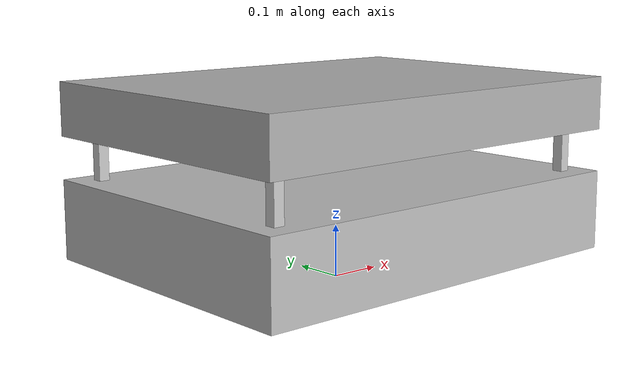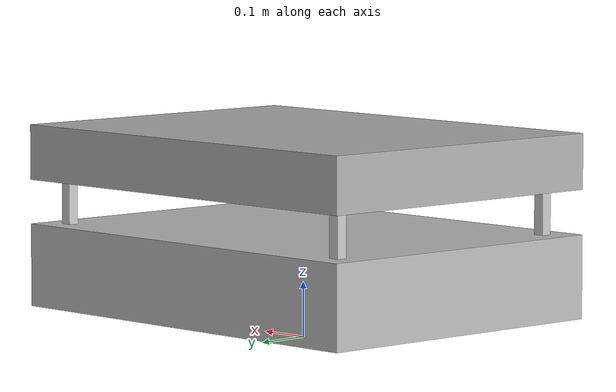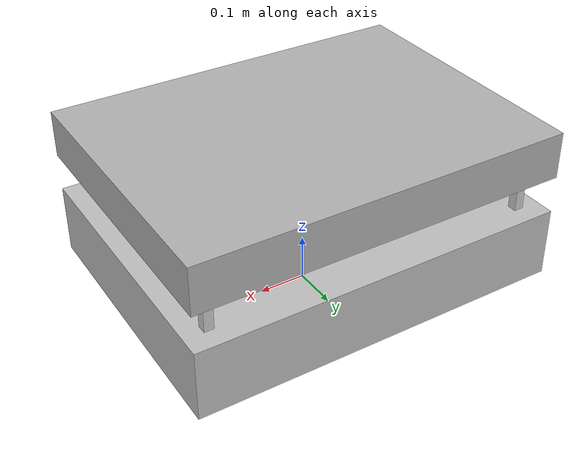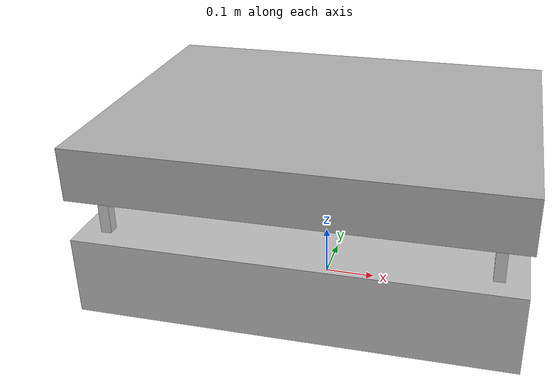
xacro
<?xml version="1.0"?>
<robot xmlns:xacro="http://www.ros.org/wiki/xacro">

    <xacro:property name="body_length_1" value="0.8"/>
    <xacro:property name="body_width_1" value="0.6"/>
    <xacro:property name="body_height_1" value="0.15"/>

    <xacro:property name="body_length_2" value="0.8"/>
    <xacro:property name="body_width_2" value="0.6"/>
    <xacro:property name="body_height_2" value="0.1"/>

    <link name="base_link"></link>
    <joint name="base_joint" type="fixed">
        <parent link="base_link"/>
        <child link="base_footprint"/>
        <origin xyz="0.0 0.0 0.0" rpy="0 0 0"/>
      </joint>

    <link name="base_footprint">
    </link>

    <joint name="chassis_1_joint" type="fixed">
        <parent link="base_link"/>
        <child link="chassis_1"/>
        <origin xyz="0.0 0.0 0.12" rpy="0 0 0" />
    </joint>

    <link name="chassis_1">
        <visual>
            <geometry>
                <box size="${body_length_1} ${body_width_1} ${body_height_1} "/>
            </geometry>
            <material name="chassis_1_mat_silver">
                <color rgba="0.75 0.75 0.75 1.0"/>
            </material>
        </visual>
    </link>
    <joint name="sup_rod_1" type="fixed">
        <parent link="chassis_1"/>
        <child link="sup_rod_1"/>
        <origin xyz="-0.35 0.25 0.115" rpy="0 0 0"/>
    </joint>

    <link name="sup_rod_1">
        <visual>
            <geometry>
                <box size="0.02 0.02 0.08"/>
            </geometry>
            <material name="sup_ros_2_red">
                <color rgba="0.8 0.8 0.8"/>
            </material>
        </visual>
    </link>

    <joint name="sup_rod_2_joint" type="fixed">
        <parent link="chassis_1"/>
        <child link="sup_rod_2"/>
        <origin xyz="0.35 -0.25 0.115" rpy="0 0 0"/>
    </joint>

    <link name="sup_rod_2">
        <visual>
            <geometry>
                <box size="0.02 0.02 0.08"/>
            </geometry>
            <material name="sup_ros_2_red">
                <color rgba="0.8 0.8 0.8"/>
            </material>
        </visual>
    </link>

    <joint name="sup_rod_3_joint" type="fixed">
        <parent link="chassis_1"/>
        <child link="sup_rod_3"/>
        <origin xyz="-0.35 -0.25 0.115" rpy="0 0 0"/>
    </joint>

    <link name="sup_rod_3">
        <visual>
            <geometry>
                <box size="0.02 0.02 0.08"/>
            </geometry>
            <material name="sup_ros_3_red">
                <color rgba="0.8 0.8 0.8"/>
            </material>
        </visual>
    </link>

    <joint name="sup_rod_4_joint" type="fixed">
        <parent link="chassis_1"/>
        <child link="sup_rod_4"/>
        <origin xyz="0.35 0.25 0.115" rpy="0 0 0"/>
    </joint>

    <link name="sup_rod_4">
        <visual>
            <geometry>
                <box size="0.02 0.02 0.08"/>
            </geometry>
            <material name="sup_ros_4_red">
                <color rgba="0.8 0.8 0.8"/>
            </material>
        </visual>
    </link>

    <joint name="chassis_2_joint" type="fixed">
        <parent link="chassis_1"/>
        <child link="chassis_2"/>
        <origin xyz="0.0 0.0 0.205" rpy="0.0 0.0 0.0"/>
    </joint>

    <link name="chassis_2">
        <visual>
            <geometry>
                <box size="${body_length_2} ${body_width_2} ${body_height_2}"/>
                <material name="chassis_2_mat_silver">
                    <color rgba="0.8 0.8 0.8 1.0"/>
                </material>
            </geometry>
        </visual>
    </link>

    <joint name="imu_joint" type="fixed">
        <parent link="chassis_1"/>
        <child link="imu_link"/>
        <axis xyz="0.0 0.0 0.10"/>
        <origin xyz="0.0 0.0 0.100" rpy="0.0 0.0 0.0"/>
    </joint>

    <link name="imu_link"></link>

</robot>
